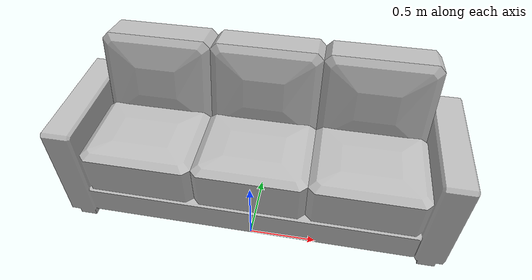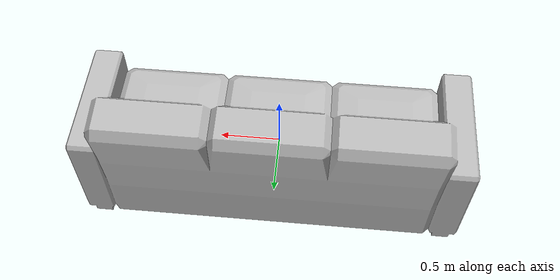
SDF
<?xml version="1.0" ?>
<sdf version="1.5">
  <model name="office_couch">
    <static>true</static>
    <link name="link">
      <collision name="collision">
        <pose>0.000893 0.384169 0.704321 0 0 0</pose>
        <geometry>
          <box>
            <size>2.914350 0.976328 1.417680</size>
          </box>
        </geometry>
      </collision>
      <visual name="visual">
        <geometry>
          <mesh>
            <uri>model://office_couch/meshes/office_couch.dae</uri>
            <scale>1.4 1.4 1.4</scale>
          </mesh>
        </geometry>
      </visual>
    </link>
  </model>
</sdf>
